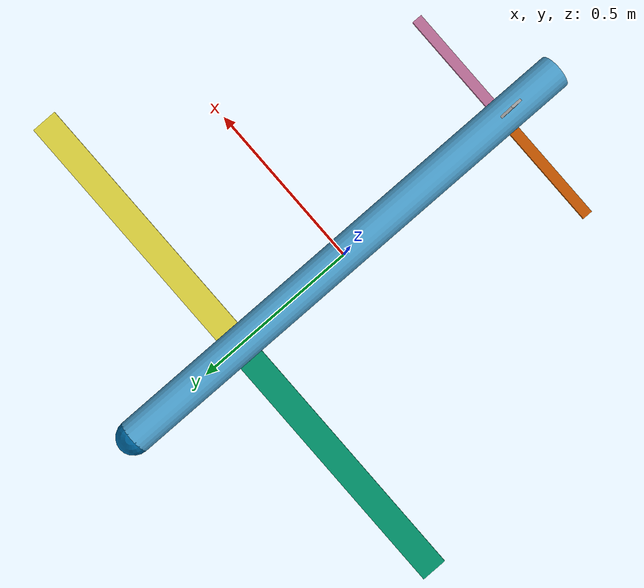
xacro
<?xml version="1.0"?>
<robot name="my_plane" xmlns:xacro="http://www.ros.org/wiki/xacro">

    <xacro:property name="cylinder_length" value="1.5"/>
    <xacro:property name="radius" value="0.05"/>

    <link name="base_footprint" />

    <link name="base_link">
        <visual>
            <geometry>
                <cylinder length="${cylinder_length}" radius="${radius}"/>
            </geometry>
            <origin rpy="${pi / 2.0} 0 0" xyz="0 0 ${radius}"/>
        </visual>
    </link>

    <xacro:macro name="wing" params="prefix">
        <link name="wing_${prefix}">
            <visual>
                <geometry>
                    <box size="${cylinder_length / 2.0} ${(cylinder_length / 2.0) / 10.0} ${(cylinder_length / 2.0) / 100.0} "/>
                </geometry>
                <origin rpy="0 0 0" xyz="0 0 0"/>
            </visual>
        </link>
    </xacro:macro>

    <xacro:wing prefix="left"/>
    <xacro:wing prefix="right"/>

    <link name="cockpit">
        <visual>
            <geometry>
                <sphere radius="${radius}"/>
            </geometry>
            <origin rpy="0 0 0" xyz="0 0 0"/>
        </visual>
        <material name="green"/>
    </link>

    <xacro:macro name="rudder" params="prefix">
        <link name="rudder_${prefix}">
            <visual>
                <geometry>
                    <box size="${(cylinder_length / 2.0) / 2.5} ${((cylinder_length / 2.0) / 10.0) / 2.5} ${(cylinder_length / 2.0) / 100.0} "/>
                </geometry>
                <origin rpy="0 0 0" xyz="0 0 0"/>
            </visual>
        </link>
    </xacro:macro>

    <xacro:rudder prefix="left"/>
    <xacro:rudder prefix="right"/>

    <link name="tail">
        <visual>
            <geometry>
                <box size="${((cylinder_length / 2.0) / 2.5) / 2.0} ${((cylinder_length / 2.0) / 10.0) / 2.5} ${(cylinder_length / 2.0) / 100.0} "/>
            </geometry>
            <origin rpy="0 ${pi / 2.0} 0" xyz="0 0 0"/>
        </visual>
    </link>

    <joint name="base_joint" type="fixed">
        <parent link="base_footprint"/>
        <child link="base_link"/>
        <origin rpy="0 0 0" xyz="0 0 0"/>
    </joint>

    <joint name="base_wing_left_joint" type="fixed">
        <parent link="base_link"/>
        <child link="wing_left"/>
        <origin rpy="0 0 0" xyz="-${((cylinder_length / 2.0)/2.0) + radius} ${ cylinder_length / 4.0} ${radius}"/>
    </joint>

    <joint name="base_wing_right_joint" type="fixed">
        <parent link="base_link"/>
        <child link="wing_right"/>
        <origin rpy="0 0 0" xyz="${((cylinder_length / 2.0)/2.0) + radius} ${ cylinder_length / 4.0} ${radius}"/>
    </joint>

    <joint name="base_cockpit_joint" type="fixed">
        <parent link="base_link"/>
        <child link="cockpit"/>
        <origin rpy="0 0 0" xyz="0 ${cylinder_length / 2.0} ${radius}"/>
    </joint>

    <joint name="base_rudder_left_joint" type="fixed">
        <parent link="base_link"/>
        <child link="rudder_left"/>
        <origin rpy="0 0 0" xyz="-${((cylinder_length / 2.0)/2.5/2.0) + radius} -${cylinder_length * (3.0 / 8.0)} ${radius}"/>
    </joint>

    <joint name="base_rudder_right_joint" type="fixed">
        <parent link="base_link"/>
        <child link="rudder_right"/>
        <origin rpy="0 0 0" xyz="${((cylinder_length / 2.0)/2.5/2.0) + radius} -${cylinder_length * (3.0 / 8.0)} ${radius}"/>
    </joint>

    <joint name="base_tail_joint" type="fixed">
        <parent link="base_link"/>
        <child link="tail"/>
        <origin rpy="0 0 0" xyz="0 -${cylinder_length * (3.0 / 8.0)} ${((((cylinder_length / 2.0) / 2.5) / 2.0) / 2.0) + (radius * 2.0)}"/>
    </joint>

</robot>
